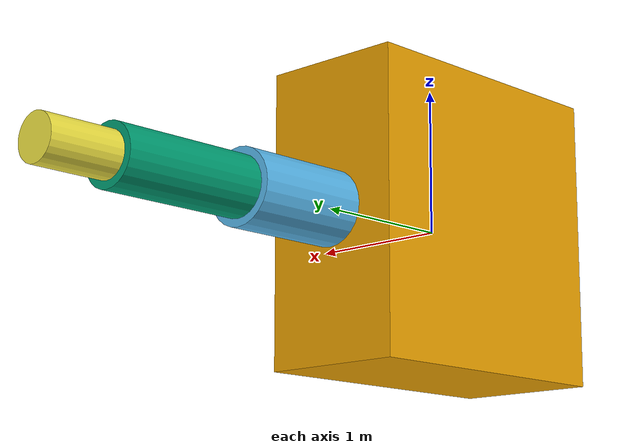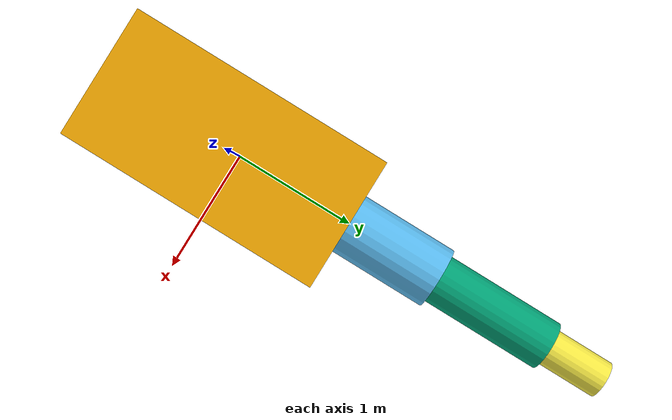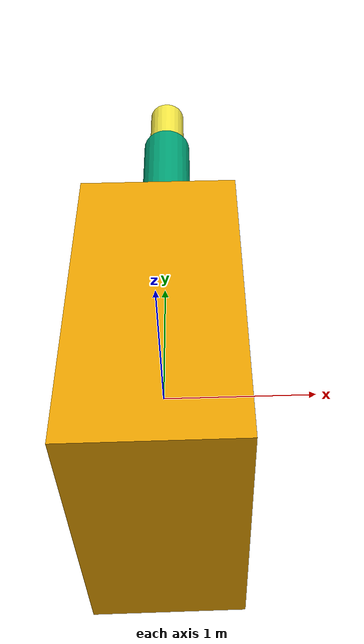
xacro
<?xml version='1.0' ?>
<robot name="mrm" xmlns:xacro="http://www.ros.org/wiki/xacro">

    <xacro:include filename="$(find mrm_description)/urdf/links_joints.xacro" />
    <xacro:include filename="$(find mrm_description)/urdf/robot_parameters.xacro" />

   <m_link_box name="${link_00_name}"
              origin_rpy="0 0 0" origin_xyz="0 0 0"
              mass="1024"
              ixx="170.667" ixy="0" ixz="0"
              iyy="170.667" iyz="0"
              izz="170.667"
              size="1 2 2" />

    <m_joint name="${link_00_name}__${link_01_name}" type="revolute" axis_xyz="0 1 0" origin_rpy="0 0 0"
    origin_xyz="0 1 0" parent="${link_00_name}" child="${link_01_name}" limit_e="1000.0" limit_l="0"
    limit_u="3.14" limit_v="0.5" />

     <m_link_cylinder name="${link_01_name}"
              origin_rpy="1.57 0 0" origin_xyz="0 0.4 0"
              radius="0.25" length="0.8"
              mass="157.633"
              ixx="13.235" ixy="0" ixz="0"
              iyy="13.235" iyz="0"
              izz="9.655" />

    <m_joint name="${link_01_name}__${link_02_name}" type="revolute" axis_xyz="1 0 0" origin_rpy="0 0 0"
    origin_xyz="0 0.8 0" parent="${link_01_name}" child="${link_02_name}" limit_e="1000.0" limit_l="-1.57"
    limit_u="1.57" limit_v="0.5" />

   <m_link_cylinder name="${link_02_name}"
              origin_rpy="1.57 0 0" origin_xyz="0 0.5 0"
              radius="0.2" length="1.0"
              mass="57.906"
              ixx="12.679" ixy="0" ixz="0"
              iyy="12.679" iyz="0"
              izz="0.651" />

    <m_joint name="${link_02_name}__${link_03_name}" type="revolute" axis_xyz="1 0 0" origin_rpy="0 0 0"
    origin_xyz="0 1.0 0" parent="${link_02_name}" child="${link_03_name}" limit_e="1000.0" limit_l="-1.57"
    limit_u="1.57" limit_v="0.5" />

     <m_link_cylinder name="${link_03_name}"
              origin_rpy="1.57 0 0" origin_xyz="0 0.25 0"
              mass="57.906"
              ixx="12.679" ixy="0" ixz="0"
              iyy="12.679" iyz="0"
              izz="0.651"
              radius="0.15" length="0.5" />

  <gazebo>
    <plugin name="gazebo_ros_control" filename="libgazebo_ros_control.so">
    </plugin>
  </gazebo>

</robot>

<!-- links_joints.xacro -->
<robot xmlns:xacro="http://www.ros.org/wiki/xacro">

  <xacro:macro name="m_joint" params="name type axis_xyz origin_rpy origin_xyz parent child limit_e limit_l limit_u limit_v">
    <joint name="${name}" type="${type}">
      <axis xyz="${axis_xyz}" />
      <limit effort="${limit_e}" lower="${limit_l}" upper="${limit_u}" velocity="${limit_v}" />
      <origin rpy="${origin_rpy}" xyz="${origin_xyz}" />
      <parent link="${parent}" />
      <child link="${child}" />
    </joint>
    <transmission name="trans_${name}">
      <type>transmission_interface/SimpleTransmission</type>
      <joint name="${name}">
        <hardwareInterface>hardware_interface/EffortJointInterface</hardwareInterface>
      </joint>
      <actuator name="motor_${name}">
        <hardwareInterface>hardware_interface/EffortJointInterface</hardwareInterface>
        <mechanicalReduction>1</mechanicalReduction>
      </actuator>
    </transmission>
  </xacro:macro>

  <xacro:macro name="m_link_cylinder" params="name origin_xyz origin_rpy radius length mass ixx ixy ixz iyy iyz izz">
    <link name="${name}">
      <inertial>
        <mass value="${mass}" />
        <origin rpy="${origin_rpy}" xyz="${origin_xyz}" />
        <inertia ixx="${ixx}" ixy="${ixy}" ixz="${ixz}" iyy="${iyy}" iyz="${iyz}" izz="${izz}" />
      </inertial>
      <collision>
        <origin rpy="${origin_rpy}" xyz="${origin_xyz}" />
        <geometry>
          <cylinder radius="${radius}" length="${length}" />
        </geometry>
      </collision>
      <visual>
        <origin rpy="${origin_rpy}" xyz="${origin_xyz}" />
        <geometry>
          <cylinder radius="${radius}" length="${length}" />
        </geometry>
      </visual>
    </link>
  </xacro:macro>

   <xacro:macro name="m_link_box" params="name origin_xyz origin_rpy size mass ixx ixy ixz iyy iyz izz">
    <link name="${name}">
      <inertial>
        <mass value="${mass}" />
        <origin rpy="${origin_rpy}" xyz="${origin_xyz}" />
        <inertia ixx="${ixx}" ixy="${ixy}" ixz="${ixz}" iyy="${iyy}" iyz="${iyz}" izz="${izz}" />
      </inertial>
      <collision>
        <origin rpy="${origin_rpy}" xyz="${origin_xyz}" />
        <geometry>
          <box size="${size}" />
        </geometry>
      </collision>
      <visual>
        <origin rpy="${origin_rpy}" xyz="${origin_xyz}" />
        <geometry>
          <box size="${size}" />
        </geometry>
      </visual>
    </link>
  </xacro:macro>

</robot>

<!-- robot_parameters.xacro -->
<robot xmlns:xacro="http://www.ros.org/wiki/xacro">
  <xacro:property name="link_00_name" value="base_link" />
  <xacro:property name="link_01_name" value="link_01" />
  <xacro:property name="link_02_name" value="link_02" />
  <xacro:property name="link_03_name" value="link_03" />
</robot>
